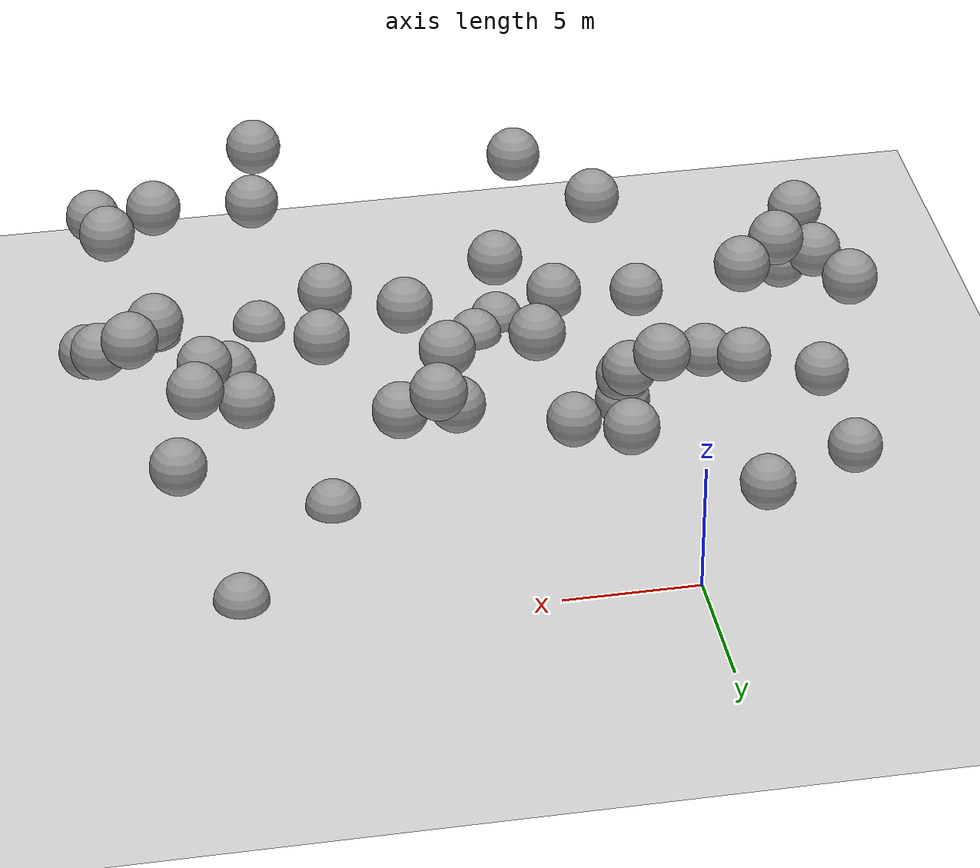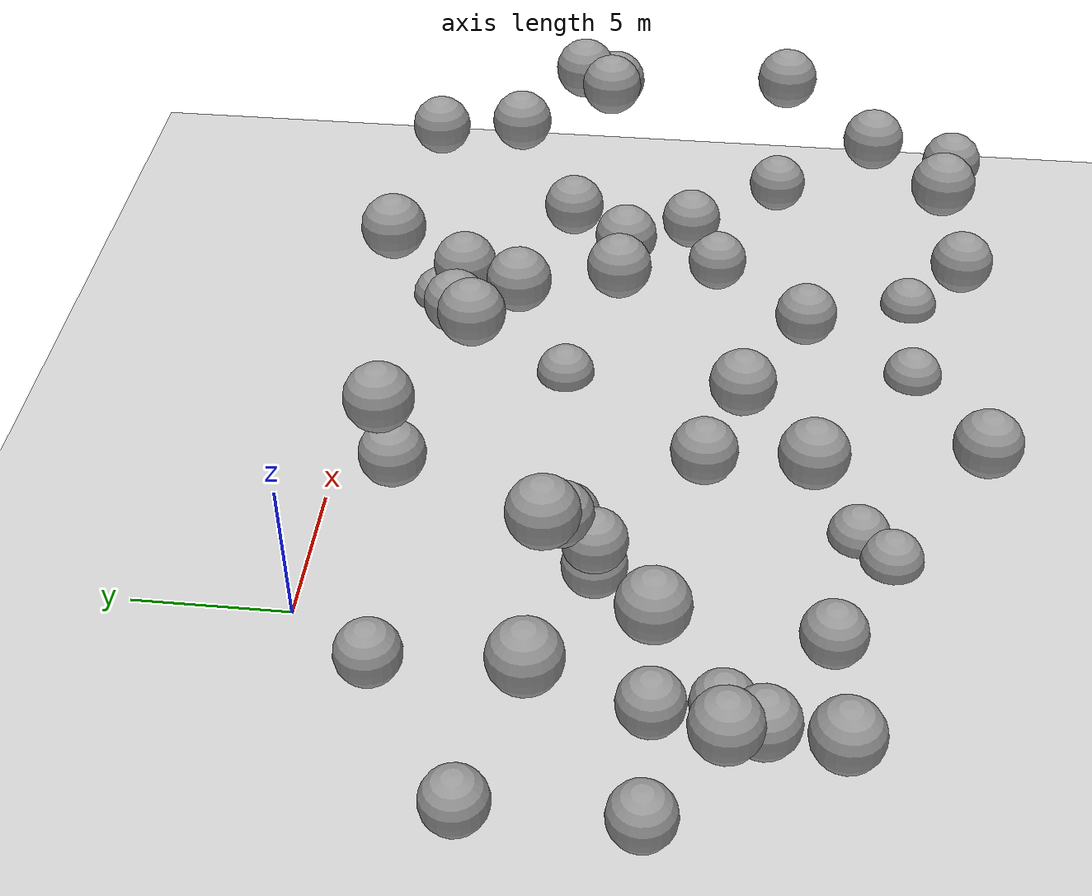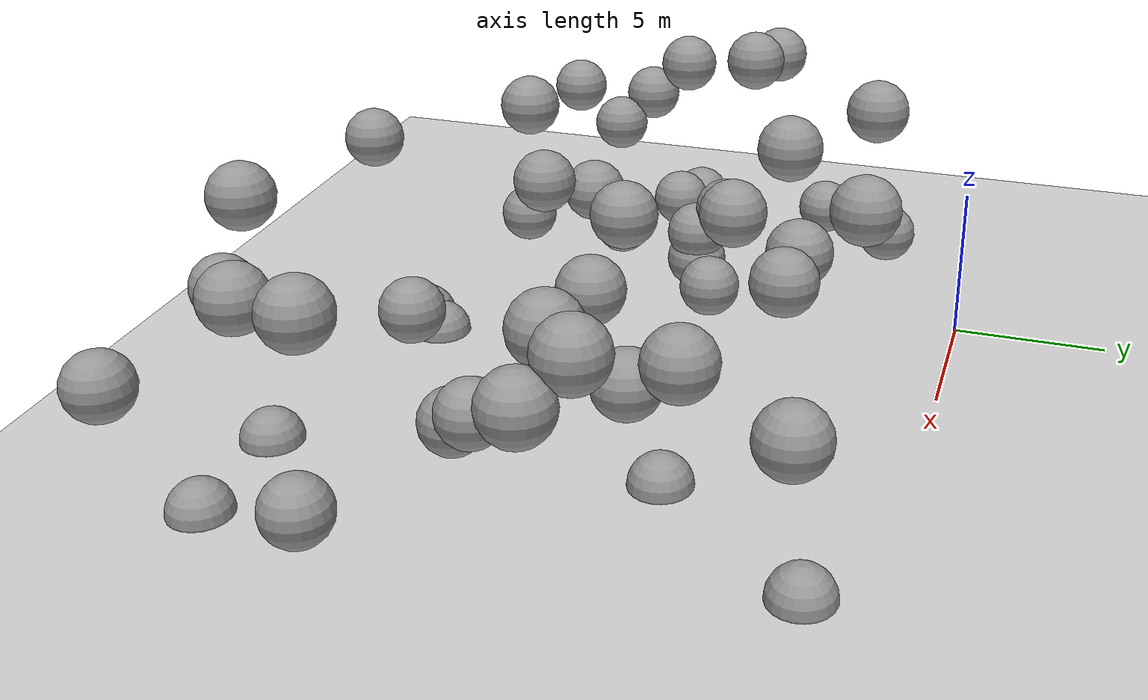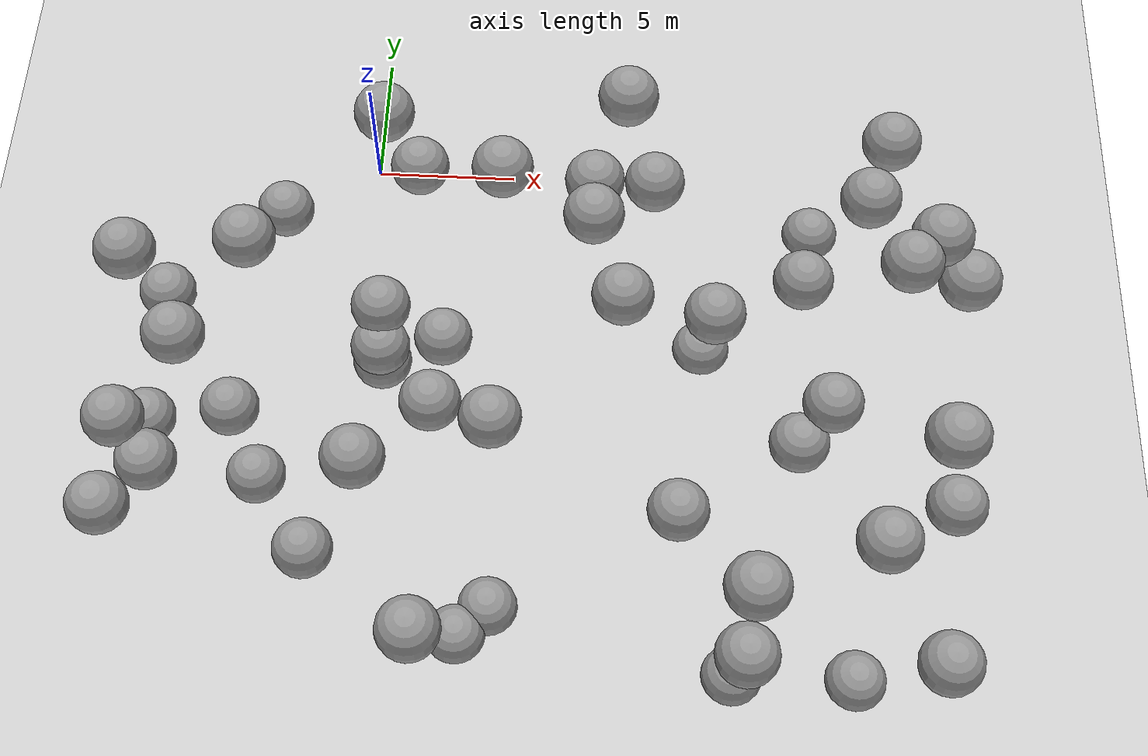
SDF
<sdf version="1.7">
 <world name="default">
  <model name="ground_plane">
   <static>1</static>
   <link name="link">
    <collision name="collision">
     <geometry><plane><normal>0 0 1</normal><size>100 100</size></plane></geometry>
     <surface>
      <contact><collide_bitmask>65535</collide_bitmask></contact>
      <friction><ode><mu>100</mu><mu2>50</mu2></ode></friction>
     </surface>
    </collision>
    <visual name="visual">
     <cast_shadows>0</cast_shadows>
     <geometry><plane><normal>0 0 1</normal><size>100 100</size></plane></geometry>
     <material>
      <script><uri>file://media/materials/scripts/gazebo.material</uri><name>Gazebo/Grey</name></script>
     </material>
    </visual>
   </link>
  </model>
  <model name="sphere_3">
   <static>1</static>
   <pose>15 -7 5 0 0 0</pose>
   <link name="link">
    <inertial>
     <mass>418.87902047863906</mass>
     <inertia>
      <ixx>167.55160819145564</ixx>
      <iyy>167.55160819145564</iyy>
      <izz>167.55160819145564</izz>
      <ixy>0</ixy>
      <ixz>0</ixz>
      <iyz>0</iyz>
     </inertia>
    </inertial>
    <collision name="collision"><geometry><sphere><radius>1.0</radius></sphere></geometry></collision>
    <visual name="visual">
     <geometry><sphere><radius>1.0</radius></sphere></geometry>
     <material>
      <script><uri>file://media/materials/scripts/gazebo.material</uri><name>Gazebo/Grey</name></script>
     </material>
    </visual>
   </link>
  </model>
  <model name="sphere_5">
   <static>1</static>
   <pose>12 -7 0 0 0 0</pose>
   <link name="link">
    <inertial>
     <mass>418.87902047863906</mass>
     <inertia>
      <ixx>167.55160819145564</ixx>
      <iyy>167.55160819145564</iyy>
      <izz>167.55160819145564</izz>
      <ixy>0</ixy>
      <ixz>0</ixz>
      <iyz>0</iyz>
     </inertia>
    </inertial>
    <collision name="collision"><geometry><sphere><radius>1.0</radius></sphere></geometry></collision>
    <visual name="visual">
     <geometry><sphere><radius>1.0</radius></sphere></geometry>
     <material>
      <script><uri>file://media/materials/scripts/gazebo.material</uri><name>Gazebo/Grey</name></script>
     </material>
    </visual>
   </link>
  </model>
  <model name="sphere_7">
   <static>1</static>
   <pose>1 -9 3 0 0 0</pose>
   <link name="link">
    <inertial>
     <mass>418.87902047863906</mass>
     <inertia>
      <ixx>167.55160819145564</ixx>
      <iyy>167.55160819145564</iyy>
      <izz>167.55160819145564</izz>
      <ixy>0</ixy>
      <ixz>0</ixz>
      <iyz>0</iyz>
     </inertia>
    </inertial>
    <collision name="collision"><geometry><sphere><radius>1.0</radius></sphere></geometry></collision>
    <visual name="visual">
     <geometry><sphere><radius>1.0</radius></sphere></geometry>
     <material>
      <script><uri>file://media/materials/scripts/gazebo.material</uri><name>Gazebo/Grey</name></script>
     </material>
    </visual>
   </link>
  </model>
  <model name="sphere_12">
   <static>1</static>
   <pose>19 -20 5 0 0 0</pose>
   <link name="link">
    <inertial>
     <mass>418.87902047863906</mass>
     <inertia>
      <ixx>167.55160819145564</ixx>
      <iyy>167.55160819145564</iyy>
      <izz>167.55160819145564</izz>
      <ixy>0</ixy>
      <ixz>0</ixz>
      <iyz>0</iyz>
     </inertia>
    </inertial>
    <collision name="collision"><geometry><sphere><radius>1.0</radius></sphere></geometry></collision>
    <visual name="visual">
     <geometry><sphere><radius>1.0</radius></sphere></geometry>
     <material>
      <script><uri>file://media/materials/scripts/gazebo.material</uri><name>Gazebo/Grey</name></script>
     </material>
    </visual>
   </link>
  </model>
  <model name="sphere_15">
   <static>1</static>
   <pose>-7 -13 5 0 0 0</pose>
   <link name="link">
    <inertial>
     <mass>418.87902047863906</mass>
     <inertia>
      <ixx>167.55160819145564</ixx>
      <iyy>167.55160819145564</iyy>
      <izz>167.55160819145564</izz>
      <ixy>0</ixy>
      <ixz>0</ixz>
      <iyz>0</iyz>
     </inertia>
    </inertial>
    <collision name="collision"><geometry><sphere><radius>1.0</radius></sphere></geometry></collision>
    <visual name="visual">
     <geometry><sphere><radius>1.0</radius></sphere></geometry>
     <material>
      <script><uri>file://media/materials/scripts/gazebo.material</uri><name>Gazebo/Grey</name></script>
     </material>
    </visual>
   </link>
  </model>
  <model name="sphere_17">
   <static>1</static>
   <pose>13 -20 5 0 0 0</pose>
   <link name="link">
    <inertial>
     <mass>418.87902047863906</mass>
     <inertia>
      <ixx>167.55160819145564</ixx>
      <iyy>167.55160819145564</iyy>
      <izz>167.55160819145564</izz>
      <ixy>0</ixy>
      <ixz>0</ixz>
      <iyz>0</iyz>
     </inertia>
    </inertial>
    <collision name="collision"><geometry><sphere><radius>1.0</radius></sphere></geometry></collision>
    <visual name="visual">
     <geometry><sphere><radius>1.0</radius></sphere></geometry>
     <material>
      <script><uri>file://media/materials/scripts/gazebo.material</uri><name>Gazebo/Grey</name></script>
     </material>
    </visual>
   </link>
  </model>
  <model name="sphere_21">
   <static>1</static>
   <pose>13 -19 8 0 0 0</pose>
   <link name="link">
    <inertial>
     <mass>418.87902047863906</mass>
     <inertia>
      <ixx>167.55160819145564</ixx>
      <iyy>167.55160819145564</iyy>
      <izz>167.55160819145564</izz>
      <ixy>0</ixy>
      <ixz>0</ixz>
      <iyz>0</iyz>
     </inertia>
    </inertial>
    <collision name="collision"><geometry><sphere><radius>1.0</radius></sphere></geometry></collision>
    <visual name="visual">
     <geometry><sphere><radius>1.0</radius></sphere></geometry>
     <material>
      <script><uri>file://media/materials/scripts/gazebo.material</uri><name>Gazebo/Grey</name></script>
     </material>
    </visual>
   </link>
  </model>
  <model name="sphere_23">
   <static>1</static>
   <pose>-7 -16 5 0 0 0</pose>
   <link name="link">
    <inertial>
     <mass>418.87902047863906</mass>
     <inertia>
      <ixx>167.55160819145564</ixx>
      <iyy>167.55160819145564</iyy>
      <izz>167.55160819145564</izz>
      <ixy>0</ixy>
      <ixz>0</ixz>
      <iyz>0</iyz>
     </inertia>
    </inertial>
    <collision name="collision"><geometry><sphere><radius>1.0</radius></sphere></geometry></collision>
    <visual name="visual">
     <geometry><sphere><radius>1.0</radius></sphere></geometry>
     <material>
      <script><uri>file://media/materials/scripts/gazebo.material</uri><name>Gazebo/Grey</name></script>
     </material>
    </visual>
   </link>
  </model>
  <model name="sphere_25">
   <static>1</static>
   <pose>2 -3 5 0 0 0</pose>
   <link name="link">
    <inertial>
     <mass>418.87902047863906</mass>
     <inertia>
      <ixx>167.55160819145564</ixx>
      <iyy>167.55160819145564</iyy>
      <izz>167.55160819145564</izz>
      <ixy>0</ixy>
      <ixz>0</ixz>
      <iyz>0</iyz>
     </inertia>
    </inertial>
    <collision name="collision"><geometry><sphere><radius>1.0</radius></sphere></geometry></collision>
    <visual name="visual">
     <geometry><sphere><radius>1.0</radius></sphere></geometry>
     <material>
      <script><uri>file://media/materials/scripts/gazebo.material</uri><name>Gazebo/Grey</name></script>
     </material>
    </visual>
   </link>
  </model>
  <model name="sphere_27">
   <static>1</static>
   <pose>11 -15 4 0 0 0</pose>
   <link name="link">
    <inertial>
     <mass>418.87902047863906</mass>
     <inertia>
      <ixx>167.55160819145564</ixx>
      <iyy>167.55160819145564</iyy>
      <izz>167.55160819145564</izz>
      <ixy>0</ixy>
      <ixz>0</ixz>
      <iyz>0</iyz>
     </inertia>
    </inertial>
    <collision name="collision"><geometry><sphere><radius>1.0</radius></sphere></geometry></collision>
    <visual name="visual">
     <geometry><sphere><radius>1.0</radius></sphere></geometry>
     <material>
      <script><uri>file://media/materials/scripts/gazebo.material</uri><name>Gazebo/Grey</name></script>
     </material>
    </visual>
   </link>
  </model>
  <model name="sphere_30">
   <static>1</static>
   <pose>13 -19 0 0 0 0</pose>
   <link name="link">
    <inertial>
     <mass>418.87902047863906</mass>
     <inertia>
      <ixx>167.55160819145564</ixx>
      <iyy>167.55160819145564</iyy>
      <izz>167.55160819145564</izz>
      <ixy>0</ixy>
      <ixz>0</ixz>
      <iyz>0</iyz>
     </inertia>
    </inertial>
    <collision name="collision"><geometry><sphere><radius>1.0</radius></sphere></geometry></collision>
    <visual name="visual">
     <geometry><sphere><radius>1.0</radius></sphere></geometry>
     <material>
      <script><uri>file://media/materials/scripts/gazebo.material</uri><name>Gazebo/Grey</name></script>
     </material>
    </visual>
   </link>
  </model>
  <model name="sphere_37">
   <static>1</static>
   <pose>1 -3 8 0 0 0</pose>
   <link name="link">
    <inertial>
     <mass>418.87902047863906</mass>
     <inertia>
      <ixx>167.55160819145564</ixx>
      <iyy>167.55160819145564</iyy>
      <izz>167.55160819145564</izz>
      <ixy>0</ixy>
      <ixz>0</ixz>
      <iyz>0</iyz>
     </inertia>
    </inertial>
    <collision name="collision"><geometry><sphere><radius>1.0</radius></sphere></geometry></collision>
    <visual name="visual">
     <geometry><sphere><radius>1.0</radius></sphere></geometry>
     <material>
      <script><uri>file://media/materials/scripts/gazebo.material</uri><name>Gazebo/Grey</name></script>
     </material>
    </visual>
   </link>
  </model>
  <model name="sphere_39">
   <static>1</static>
   <pose>18 -2 6 0 0 0</pose>
   <link name="link">
    <inertial>
     <mass>418.87902047863906</mass>
     <inertia>
      <ixx>167.55160819145564</ixx>
      <iyy>167.55160819145564</iyy>
      <izz>167.55160819145564</izz>
      <ixy>0</ixy>
      <ixz>0</ixz>
      <iyz>0</iyz>
     </inertia>
    </inertial>
    <collision name="collision"><geometry><sphere><radius>1.0</radius></sphere></geometry></collision>
    <visual name="visual">
     <geometry><sphere><radius>1.0</radius></sphere></geometry>
     <material>
      <script><uri>file://media/materials/scripts/gazebo.material</uri><name>Gazebo/Grey</name></script>
     </material>
    </visual>
   </link>
  </model>
  <model name="sphere_42">
   <static>1</static>
   <pose>-5 -11 7 0 0 0</pose>
   <link name="link">
    <inertial>
     <mass>418.87902047863906</mass>
     <inertia>
      <ixx>167.55160819145564</ixx>
      <iyy>167.55160819145564</iyy>
      <izz>167.55160819145564</izz>
      <ixy>0</ixy>
      <ixz>0</ixz>
      <iyz>0</iyz>
     </inertia>
    </inertial>
    <collision name="collision"><geometry><sphere><radius>1.0</radius></sphere></geometry></collision>
    <visual name="visual">
     <geometry><sphere><radius>1.0</radius></sphere></geometry>
     <material>
      <script><uri>file://media/materials/scripts/gazebo.material</uri><name>Gazebo/Grey</name></script>
     </material>
    </visual>
   </link>
  </model>
  <model name="sphere_43">
   <static>1</static>
   <pose>18 -8 8 0 0 0</pose>
   <link name="link">
    <inertial>
     <mass>418.87902047863906</mass>
     <inertia>
      <ixx>167.55160819145564</ixx>
      <iyy>167.55160819145564</iyy>
      <izz>167.55160819145564</izz>
      <ixy>0</ixy>
      <ixz>0</ixz>
      <iyz>0</iyz>
     </inertia>
    </inertial>
    <collision name="collision"><geometry><sphere><radius>1.0</radius></sphere></geometry></collision>
    <visual name="visual">
     <geometry><sphere><radius>1.0</radius></sphere></geometry>
     <material>
      <script><uri>file://media/materials/scripts/gazebo.material</uri><name>Gazebo/Grey</name></script>
     </material>
    </visual>
   </link>
  </model>
  <model name="sphere_48">
   <static>1</static>
   <pose>5 -5 8 0 0 0</pose>
   <link name="link">
    <inertial>
     <mass>418.87902047863906</mass>
     <inertia>
      <ixx>167.55160819145564</ixx>
      <iyy>167.55160819145564</iyy>
      <izz>167.55160819145564</izz>
      <ixy>0</ixy>
      <ixz>0</ixz>
      <iyz>0</iyz>
     </inertia>
    </inertial>
    <collision name="collision"><geometry><sphere><radius>1.0</radius></sphere></geometry></collision>
    <visual name="visual">
     <geometry><sphere><radius>1.0</radius></sphere></geometry>
     <material>
      <script><uri>file://media/materials/scripts/gazebo.material</uri><name>Gazebo/Grey</name></script>
     </material>
    </visual>
   </link>
  </model>
  <model name="sphere_49">
   <static>1</static>
   <pose>16 -11 4 0 0 0</pose>
   <link name="link">
    <inertial>
     <mass>418.87902047863906</mass>
     <inertia>
      <ixx>167.55160819145564</ixx>
      <iyy>167.55160819145564</iyy>
      <izz>167.55160819145564</izz>
      <ixy>0</ixy>
      <ixz>0</ixz>
      <iyz>0</iyz>
     </inertia>
    </inertial>
    <collision name="collision"><geometry><sphere><radius>1.0</radius></sphere></geometry></collision>
    <visual name="visual">
     <geometry><sphere><radius>1.0</radius></sphere></geometry>
     <material>
      <script><uri>file://media/materials/scripts/gazebo.material</uri><name>Gazebo/Grey</name></script>
     </material>
    </visual>
   </link>
  </model>
  <model name="sphere_51">
   <static>1</static>
   <pose>20 -8 7 0 0 0</pose>
   <link name="link">
    <inertial>
     <mass>418.87902047863906</mass>
     <inertia>
      <ixx>167.55160819145564</ixx>
      <iyy>167.55160819145564</iyy>
      <izz>167.55160819145564</izz>
      <ixy>0</ixy>
      <ixz>0</ixz>
      <iyz>0</iyz>
     </inertia>
    </inertial>
    <collision name="collision"><geometry><sphere><radius>1.0</radius></sphere></geometry></collision>
    <visual name="visual">
     <geometry><sphere><radius>1.0</radius></sphere></geometry>
     <material>
      <script><uri>file://media/materials/scripts/gazebo.material</uri><name>Gazebo/Grey</name></script>
     </material>
    </visual>
   </link>
  </model>
  <model name="sphere_52">
   <static>1</static>
   <pose>17 -17 7 0 0 0</pose>
   <link name="link">
    <inertial>
     <mass>418.87902047863906</mass>
     <inertia>
      <ixx>167.55160819145564</ixx>
      <iyy>167.55160819145564</iyy>
      <izz>167.55160819145564</izz>
      <ixy>0</ixy>
      <ixz>0</ixz>
      <iyz>0</iyz>
     </inertia>
    </inertial>
    <collision name="collision"><geometry><sphere><radius>1.0</radius></sphere></geometry></collision>
    <visual name="visual">
     <geometry><sphere><radius>1.0</radius></sphere></geometry>
     <material>
      <script><uri>file://media/materials/scripts/gazebo.material</uri><name>Gazebo/Grey</name></script>
     </material>
    </visual>
   </link>
  </model>
  <model name="sphere_54">
   <static>1</static>
   <pose>17 -5 7 0 0 0</pose>
   <link name="link">
    <inertial>
     <mass>418.87902047863906</mass>
     <inertia>
      <ixx>167.55160819145564</ixx>
      <iyy>167.55160819145564</iyy>
      <izz>167.55160819145564</izz>
      <ixy>0</ixy>
      <ixz>0</ixz>
      <iyz>0</iyz>
     </inertia>
    </inertial>
    <collision name="collision"><geometry><sphere><radius>1.0</radius></sphere></geometry></collision>
    <visual name="visual">
     <geometry><sphere><radius>1.0</radius></sphere></geometry>
     <material>
      <script><uri>file://media/materials/scripts/gazebo.material</uri><name>Gazebo/Grey</name></script>
     </material>
    </visual>
   </link>
  </model>
  <model name="sphere_55">
   <static>1</static>
   <pose>19 -14 8 0 0 0</pose>
   <link name="link">
    <inertial>
     <mass>418.87902047863906</mass>
     <inertia>
      <ixx>167.55160819145564</ixx>
      <iyy>167.55160819145564</iyy>
      <izz>167.55160819145564</izz>
      <ixy>0</ixy>
      <ixz>0</ixz>
      <iyz>0</iyz>
     </inertia>
    </inertial>
    <collision name="collision"><geometry><sphere><radius>1.0</radius></sphere></geometry></collision>
    <visual name="visual">
     <geometry><sphere><radius>1.0</radius></sphere></geometry>
     <material>
      <script><uri>file://media/materials/scripts/gazebo.material</uri><name>Gazebo/Grey</name></script>
     </material>
    </visual>
   </link>
  </model>
  <model name="sphere_56">
   <static>1</static>
   <pose>-7 -6 1 0 0 0</pose>
   <link name="link">
    <inertial>
     <mass>418.87902047863906</mass>
     <inertia>
      <ixx>167.55160819145564</ixx>
      <iyy>167.55160819145564</iyy>
      <izz>167.55160819145564</izz>
      <ixy>0</ixy>
      <ixz>0</ixz>
      <iyz>0</iyz>
     </inertia>
    </inertial>
    <collision name="collision"><geometry><sphere><radius>1.0</radius></sphere></geometry></collision>
    <visual name="visual">
     <geometry><sphere><radius>1.0</radius></sphere></geometry>
     <material>
      <script><uri>file://media/materials/scripts/gazebo.material</uri><name>Gazebo/Grey</name></script>
     </material>
    </visual>
   </link>
  </model>
  <model name="sphere_57">
   <static>1</static>
   <pose>19 -7 8 0 0 0</pose>
   <link name="link">
    <inertial>
     <mass>418.87902047863906</mass>
     <inertia>
      <ixx>167.55160819145564</ixx>
      <iyy>167.55160819145564</iyy>
      <izz>167.55160819145564</izz>
      <ixy>0</ixy>
      <ixz>0</ixz>
      <iyz>0</iyz>
     </inertia>
    </inertial>
    <collision name="collision"><geometry><sphere><radius>1.0</radius></sphere></geometry></collision>
    <visual name="visual">
     <geometry><sphere><radius>1.0</radius></sphere></geometry>
     <material>
      <script><uri>file://media/materials/scripts/gazebo.material</uri><name>Gazebo/Grey</name></script>
     </material>
    </visual>
   </link>
  </model>
  <model name="sphere_58">
   <static>1</static>
   <pose>4 -18 0 0 0 0</pose>
   <link name="link">
    <inertial>
     <mass>418.87902047863906</mass>
     <inertia>
      <ixx>167.55160819145564</ixx>
      <iyy>167.55160819145564</iyy>
      <izz>167.55160819145564</izz>
      <ixy>0</ixy>
      <ixz>0</ixz>
      <iyz>0</iyz>
     </inertia>
    </inertial>
    <collision name="collision"><geometry><sphere><radius>1.0</radius></sphere></geometry></collision>
    <visual name="visual">
     <geometry><sphere><radius>1.0</radius></sphere></geometry>
     <material>
      <script><uri>file://media/materials/scripts/gazebo.material</uri><name>Gazebo/Grey</name></script>
     </material>
    </visual>
   </link>
  </model>
  <model name="sphere_59">
   <static>1</static>
   <pose>-7 -11 1 0 0 0</pose>
   <link name="link">
    <inertial>
     <mass>418.87902047863906</mass>
     <inertia>
      <ixx>167.55160819145564</ixx>
      <iyy>167.55160819145564</iyy>
      <izz>167.55160819145564</izz>
      <ixy>0</ixy>
      <ixz>0</ixz>
      <iyz>0</iyz>
     </inertia>
    </inertial>
    <collision name="collision"><geometry><sphere><radius>1.0</radius></sphere></geometry></collision>
    <visual name="visual">
     <geometry><sphere><radius>1.0</radius></sphere></geometry>
     <material>
      <script><uri>file://media/materials/scripts/gazebo.material</uri><name>Gazebo/Grey</name></script>
     </material>
    </visual>
   </link>
  </model>
  <model name="sphere_60">
   <static>1</static>
   <pose>17 -19 0 0 0 0</pose>
   <link name="link">
    <inertial>
     <mass>418.87902047863906</mass>
     <inertia>
      <ixx>167.55160819145564</ixx>
      <iyy>167.55160819145564</iyy>
      <izz>167.55160819145564</izz>
      <ixy>0</ixy>
      <ixz>0</ixz>
      <iyz>0</iyz>
     </inertia>
    </inertial>
    <collision name="collision"><geometry><sphere><radius>1.0</radius></sphere></geometry></collision>
    <visual name="visual">
     <geometry><sphere><radius>1.0</radius></sphere></geometry>
     <material>
      <script><uri>file://media/materials/scripts/gazebo.material</uri><name>Gazebo/Grey</name></script>
     </material>
    </visual>
   </link>
  </model>
  <model name="sphere_63">
   <static>1</static>
   <pose>3 -8 2 0 0 0</pose>
   <link name="link">
    <inertial>
     <mass>418.87902047863906</mass>
     <inertia>
      <ixx>167.55160819145564</ixx>
      <iyy>167.55160819145564</iyy>
      <izz>167.55160819145564</izz>
      <ixy>0</ixy>
      <ixz>0</ixz>
      <iyz>0</iyz>
     </inertia>
    </inertial>
    <collision name="collision"><geometry><sphere><radius>1.0</radius></sphere></geometry></collision>
    <visual name="visual">
     <geometry><sphere><radius>1.0</radius></sphere></geometry>
     <material>
      <script><uri>file://media/materials/scripts/gazebo.material</uri><name>Gazebo/Grey</name></script>
     </material>
    </visual>
   </link>
  </model>
  <model name="sphere_64">
   <static>1</static>
   <pose>-1 -16 2 0 0 0</pose>
   <link name="link">
    <inertial>
     <mass>418.87902047863906</mass>
     <inertia>
      <ixx>167.55160819145564</ixx>
      <iyy>167.55160819145564</iyy>
      <izz>167.55160819145564</izz>
      <ixy>0</ixy>
      <ixz>0</ixz>
      <iyz>0</iyz>
     </inertia>
    </inertial>
    <collision name="collision"><geometry><sphere><radius>1.0</radius></sphere></geometry></collision>
    <visual name="visual">
     <geometry><sphere><radius>1.0</radius></sphere></geometry>
     <material>
      <script><uri>file://media/materials/scripts/gazebo.material</uri><name>Gazebo/Grey</name></script>
     </material>
    </visual>
   </link>
  </model>
  <model name="sphere_68">
   <static>1</static>
   <pose>16 -2 0 0 0 0</pose>
   <link name="link">
    <inertial>
     <mass>418.87902047863906</mass>
     <inertia>
      <ixx>167.55160819145564</ixx>
      <iyy>167.55160819145564</iyy>
      <izz>167.55160819145564</izz>
      <ixy>0</ixy>
      <ixz>0</ixz>
      <iyz>0</iyz>
     </inertia>
    </inertial>
    <collision name="collision"><geometry><sphere><radius>1.0</radius></sphere></geometry></collision>
    <visual name="visual">
     <geometry><sphere><radius>1.0</radius></sphere></geometry>
     <material>
      <script><uri>file://media/materials/scripts/gazebo.material</uri><name>Gazebo/Grey</name></script>
     </material>
    </visual>
   </link>
  </model>
  <model name="sphere_69">
   <static>1</static>
   <pose>-3 -13 1 0 0 0</pose>
   <link name="link">
    <inertial>
     <mass>418.87902047863906</mass>
     <inertia>
      <ixx>167.55160819145564</ixx>
      <iyy>167.55160819145564</iyy>
      <izz>167.55160819145564</izz>
      <ixy>0</ixy>
      <ixz>0</ixz>
      <iyz>0</iyz>
     </inertia>
    </inertial>
    <collision name="collision"><geometry><sphere><radius>1.0</radius></sphere></geometry></collision>
    <visual name="visual">
     <geometry><sphere><radius>1.0</radius></sphere></geometry>
     <material>
      <script><uri>file://media/materials/scripts/gazebo.material</uri><name>Gazebo/Grey</name></script>
     </material>
    </visual>
   </link>
  </model>
  <model name="sphere_72">
   <static>1</static>
   <pose>9 -2 8 0 0 0</pose>
   <link name="link">
    <inertial>
     <mass>418.87902047863906</mass>
     <inertia>
      <ixx>167.55160819145564</ixx>
      <iyy>167.55160819145564</iyy>
      <izz>167.55160819145564</izz>
      <ixy>0</ixy>
      <ixz>0</ixz>
      <iyz>0</iyz>
     </inertia>
    </inertial>
    <collision name="collision"><geometry><sphere><radius>1.0</radius></sphere></geometry></collision>
    <visual name="visual">
     <geometry><sphere><radius>1.0</radius></sphere></geometry>
     <material>
      <script><uri>file://media/materials/scripts/gazebo.material</uri><name>Gazebo/Grey</name></script>
     </material>
    </visual>
   </link>
  </model>
  <model name="sphere_81">
   <static>1</static>
   <pose>12 -9 6 0 0 0</pose>
   <link name="link">
    <inertial>
     <mass>418.87902047863906</mass>
     <inertia>
      <ixx>167.55160819145564</ixx>
      <iyy>167.55160819145564</iyy>
      <izz>167.55160819145564</izz>
      <ixy>0</ixy>
      <ixz>0</ixz>
      <iyz>0</iyz>
     </inertia>
    </inertial>
    <collision name="collision"><geometry><sphere><radius>1.0</radius></sphere></geometry></collision>
    <visual name="visual">
     <geometry><sphere><radius>1.0</radius></sphere></geometry>
     <material>
      <script><uri>file://media/materials/scripts/gazebo.material</uri><name>Gazebo/Grey</name></script>
     </material>
    </visual>
   </link>
  </model>
  <model name="sphere_83">
   <static>1</static>
   <pose>3 -12 5 0 0 0</pose>
   <link name="link">
    <inertial>
     <mass>418.87902047863906</mass>
     <inertia>
      <ixx>167.55160819145564</ixx>
      <iyy>167.55160819145564</iyy>
      <izz>167.55160819145564</izz>
      <ixy>0</ixy>
      <ixz>0</ixz>
      <iyz>0</iyz>
     </inertia>
    </inertial>
    <collision name="collision"><geometry><sphere><radius>1.0</radius></sphere></geometry></collision>
    <visual name="visual">
     <geometry><sphere><radius>1.0</radius></sphere></geometry>
     <material>
      <script><uri>file://media/materials/scripts/gazebo.material</uri><name>Gazebo/Grey</name></script>
     </material>
    </visual>
   </link>
  </model>
  <model name="sphere_85">
   <static>1</static>
   <pose>8 -6 7 0 0 0</pose>
   <link name="link">
    <inertial>
     <mass>418.87902047863906</mass>
     <inertia>
      <ixx>167.55160819145564</ixx>
      <iyy>167.55160819145564</iyy>
      <izz>167.55160819145564</izz>
      <ixy>0</ixy>
      <ixz>0</ixz>
      <iyz>0</iyz>
     </inertia>
    </inertial>
    <collision name="collision"><geometry><sphere><radius>1.0</radius></sphere></geometry></collision>
    <visual name="visual">
     <geometry><sphere><radius>1.0</radius></sphere></geometry>
     <material>
      <script><uri>file://media/materials/scripts/gazebo.material</uri><name>Gazebo/Grey</name></script>
     </material>
    </visual>
   </link>
  </model>
  <model name="sphere_90">
   <static>1</static>
   <pose>8 -4 6 0 0 0</pose>
   <link name="link">
    <inertial>
     <mass>418.87902047863906</mass>
     <inertia>
      <ixx>167.55160819145564</ixx>
      <iyy>167.55160819145564</iyy>
      <izz>167.55160819145564</izz>
      <ixy>0</ixy>
      <ixz>0</ixz>
      <iyz>0</iyz>
     </inertia>
    </inertial>
    <collision name="collision"><geometry><sphere><radius>1.0</radius></sphere></geometry></collision>
    <visual name="visual">
     <geometry><sphere><radius>1.0</radius></sphere></geometry>
     <material>
      <script><uri>file://media/materials/scripts/gazebo.material</uri><name>Gazebo/Grey</name></script>
     </material>
    </visual>
   </link>
  </model>
  <model name="sphere_94">
   <static>1</static>
   <pose>1 -15 7 0 0 0</pose>
   <link name="link">
    <inertial>
     <mass>418.87902047863906</mass>
     <inertia>
      <ixx>167.55160819145564</ixx>
      <iyy>167.55160819145564</iyy>
      <izz>167.55160819145564</izz>
      <ixy>0</ixy>
      <ixz>0</ixz>
      <iyz>0</iyz>
     </inertia>
    </inertial>
    <collision name="collision"><geometry><sphere><radius>1.0</radius></sphere></geometry></collision>
    <visual name="visual">
     <geometry><sphere><radius>1.0</radius></sphere></geometry>
     <material>
      <script><uri>file://media/materials/scripts/gazebo.material</uri><name>Gazebo/Grey</name></script>
     </material>
    </visual>
   </link>
  </model>
  <model name="sphere_99">
   <static>1</static>
   <pose>1 -8 4 0 0 0</pose>
   <link name="link">
    <inertial>
     <mass>418.87902047863906</mass>
     <inertia>
      <ixx>167.55160819145564</ixx>
      <iyy>167.55160819145564</iyy>
      <izz>167.55160819145564</izz>
      <ixy>0</ixy>
      <ixz>0</ixz>
      <iyz>0</iyz>
     </inertia>
    </inertial>
    <collision name="collision"><geometry><sphere><radius>1.0</radius></sphere></geometry></collision>
    <visual name="visual">
     <geometry><sphere><radius>1.0</radius></sphere></geometry>
     <material>
      <script><uri>file://media/materials/scripts/gazebo.material</uri><name>Gazebo/Grey</name></script>
     </material>
    </visual>
   </link>
  </model>
  <model name="sphere_100">
   <static>1</static>
   <pose>10 -4 6 0 0 0</pose>
   <link name="link">
    <inertial>
     <mass>418.87902047863906</mass>
     <inertia>
      <ixx>167.55160819145564</ixx>
      <iyy>167.55160819145564</iyy>
      <izz>167.55160819145564</izz>
      <ixy>0</ixy>
      <ixz>0</ixz>
      <iyz>0</iyz>
     </inertia>
    </inertial>
    <collision name="collision"><geometry><sphere><radius>1.0</radius></sphere></geometry></collision>
    <visual name="visual">
     <geometry><sphere><radius>1.0</radius></sphere></geometry>
     <material>
      <script><uri>file://media/materials/scripts/gazebo.material</uri><name>Gazebo/Grey</name></script>
     </material>
    </visual>
   </link>
  </model>
  <model name="sphere_113">
   <static>1</static>
   <pose>3 -20 6 0 0 0</pose>
   <link name="link">
    <inertial>
     <mass>418.87902047863906</mass>
     <inertia>
      <ixx>167.55160819145564</ixx>
      <iyy>167.55160819145564</iyy>
      <izz>167.55160819145564</izz>
      <ixy>0</ixy>
      <ixz>0</ixz>
      <iyz>0</iyz>
     </inertia>
    </inertial>
    <collision name="collision"><geometry><sphere><radius>1.0</radius></sphere></geometry></collision>
    <visual name="visual">
     <geometry><sphere><radius>1.0</radius></sphere></geometry>
     <material>
      <script><uri>file://media/materials/scripts/gazebo.material</uri><name>Gazebo/Grey</name></script>
     </material>
    </visual>
   </link>
  </model>
  <model name="sphere_114">
   <static>1</static>
   <pose>-7 -8 7 0 0 0</pose>
   <link name="link">
    <inertial>
     <mass>418.87902047863906</mass>
     <inertia>
      <ixx>167.55160819145564</ixx>
      <iyy>167.55160819145564</iyy>
      <izz>167.55160819145564</izz>
      <ixy>0</ixy>
      <ixz>0</ixz>
      <iyz>0</iyz>
     </inertia>
    </inertial>
    <collision name="collision"><geometry><sphere><radius>1.0</radius></sphere></geometry></collision>
    <visual name="visual">
     <geometry><sphere><radius>1.0</radius></sphere></geometry>
     <material>
      <script><uri>file://media/materials/scripts/gazebo.material</uri><name>Gazebo/Grey</name></script>
     </material>
    </visual>
   </link>
  </model>
  <model name="sphere_117">
   <static>1</static>
   <pose>5 -13 6 0 0 0</pose>
   <link name="link">
    <inertial>
     <mass>418.87902047863906</mass>
     <inertia>
      <ixx>167.55160819145564</ixx>
      <iyy>167.55160819145564</iyy>
      <izz>167.55160819145564</izz>
      <ixy>0</ixy>
      <ixz>0</ixz>
      <iyz>0</iyz>
     </inertia>
    </inertial>
    <collision name="collision"><geometry><sphere><radius>1.0</radius></sphere></geometry></collision>
    <visual name="visual">
     <geometry><sphere><radius>1.0</radius></sphere></geometry>
     <material>
      <script><uri>file://media/materials/scripts/gazebo.material</uri><name>Gazebo/Grey</name></script>
     </material>
    </visual>
   </link>
  </model>
  <model name="sphere_121">
   <static>1</static>
   <pose>1 -9 2 0 0 0</pose>
   <link name="link">
    <inertial>
     <mass>418.87902047863906</mass>
     <inertia>
      <ixx>167.55160819145564</ixx>
      <iyy>167.55160819145564</iyy>
      <izz>167.55160819145564</izz>
      <ixy>0</ixy>
      <ixz>0</ixz>
      <iyz>0</iyz>
     </inertia>
    </inertial>
    <collision name="collision"><geometry><sphere><radius>1.0</radius></sphere></geometry></collision>
    <visual name="visual">
     <geometry><sphere><radius>1.0</radius></sphere></geometry>
     <material>
      <script><uri>file://media/materials/scripts/gazebo.material</uri><name>Gazebo/Grey</name></script>
     </material>
    </visual>
   </link>
  </model>
  <model name="sphere_125">
   <static>1</static>
   <pose>20 -14 3 0 0 0</pose>
   <link name="link">
    <inertial>
     <mass>418.87902047863906</mass>
     <inertia>
      <ixx>167.55160819145564</ixx>
      <iyy>167.55160819145564</iyy>
      <izz>167.55160819145564</izz>
      <ixy>0</ixy>
      <ixz>0</ixz>
      <iyz>0</iyz>
     </inertia>
    </inertial>
    <collision name="collision"><geometry><sphere><radius>1.0</radius></sphere></geometry></collision>
    <visual name="visual">
     <geometry><sphere><radius>1.0</radius></sphere></geometry>
     <material>
      <script><uri>file://media/materials/scripts/gazebo.material</uri><name>Gazebo/Grey</name></script>
     </material>
    </visual>
   </link>
  </model>
  <model name="sphere_127">
   <static>1</static>
   <pose>5 -17 0 0 0 0</pose>
   <link name="link">
    <inertial>
     <mass>418.87902047863906</mass>
     <inertia>
      <ixx>167.55160819145564</ixx>
      <iyy>167.55160819145564</iyy>
      <izz>167.55160819145564</izz>
      <ixy>0</ixy>
      <ixz>0</ixz>
      <iyz>0</iyz>
     </inertia>
    </inertial>
    <collision name="collision"><geometry><sphere><radius>1.0</radius></sphere></geometry></collision>
    <visual name="visual">
     <geometry><sphere><radius>1.0</radius></sphere></geometry>
     <material>
      <script><uri>file://media/materials/scripts/gazebo.material</uri><name>Gazebo/Grey</name></script>
     </material>
    </visual>
   </link>
  </model>
  <model name="sphere_131">
   <static>1</static>
   <pose>15 -12 3 0 0 0</pose>
   <link name="link">
    <inertial>
     <mass>418.87902047863906</mass>
     <inertia>
      <ixx>167.55160819145564</ixx>
      <iyy>167.55160819145564</iyy>
      <izz>167.55160819145564</izz>
      <ixy>0</ixy>
      <ixz>0</ixz>
      <iyz>0</iyz>
     </inertia>
    </inertial>
    <collision name="collision"><geometry><sphere><radius>1.0</radius></sphere></geometry></collision>
    <visual name="visual">
     <geometry><sphere><radius>1.0</radius></sphere></geometry>
     <material>
      <script><uri>file://media/materials/scripts/gazebo.material</uri><name>Gazebo/Grey</name></script>
     </material>
    </visual>
   </link>
  </model>
  <model name="sphere_135">
   <static>1</static>
   <pose>-6 -14 4 0 0 0</pose>
   <link name="link">
    <inertial>
     <mass>418.87902047863906</mass>
     <inertia>
      <ixx>167.55160819145564</ixx>
      <iyy>167.55160819145564</iyy>
      <izz>167.55160819145564</izz>
      <ixy>0</ixy>
      <ixz>0</ixz>
      <iyz>0</iyz>
     </inertia>
    </inertial>
    <collision name="collision"><geometry><sphere><radius>1.0</radius></sphere></geometry></collision>
    <visual name="visual">
     <geometry><sphere><radius>1.0</radius></sphere></geometry>
     <material>
      <script><uri>file://media/materials/scripts/gazebo.material</uri><name>Gazebo/Grey</name></script>
     </material>
    </visual>
   </link>
  </model>
  <model name="sphere_141">
   <static>1</static>
   <pose>9 -9 7 0 0 0</pose>
   <link name="link">
    <inertial>
     <mass>418.87902047863906</mass>
     <inertia>
      <ixx>167.55160819145564</ixx>
      <iyy>167.55160819145564</iyy>
      <izz>167.55160819145564</izz>
      <ixy>0</ixy>
      <ixz>0</ixz>
      <iyz>0</iyz>
     </inertia>
    </inertial>
    <collision name="collision"><geometry><sphere><radius>1.0</radius></sphere></geometry></collision>
    <visual name="visual">
     <geometry><sphere><radius>1.0</radius></sphere></geometry>
     <material>
      <script><uri>file://media/materials/scripts/gazebo.material</uri><name>Gazebo/Grey</name></script>
     </material>
    </visual>
   </link>
  </model>
  <model name="sphere_145">
   <static>1</static>
   <pose>-3 -3 2 0 0 0</pose>
   <link name="link">
    <inertial>
     <mass>418.87902047863906</mass>
     <inertia>
      <ixx>167.55160819145564</ixx>
      <iyy>167.55160819145564</iyy>
      <izz>167.55160819145564</izz>
      <ixy>0</ixy>
      <ixz>0</ixz>
      <iyz>0</iyz>
     </inertia>
    </inertial>
    <collision name="collision"><geometry><sphere><radius>1.0</radius></sphere></geometry></collision>
    <visual name="visual">
     <geometry><sphere><radius>1.0</radius></sphere></geometry>
     <material>
      <script><uri>file://media/materials/scripts/gazebo.material</uri><name>Gazebo/Grey</name></script>
     </material>
    </visual>
   </link>
  </model>
  <model name="sphere_146">
   <static>1</static>
   <pose>-3 -8 8 0 0 0</pose>
   <link name="link">
    <inertial>
     <mass>418.87902047863906</mass>
     <inertia>
      <ixx>167.55160819145564</ixx>
      <iyy>167.55160819145564</iyy>
      <izz>167.55160819145564</izz>
      <ixy>0</ixy>
      <ixz>0</ixz>
      <iyz>0</iyz>
     </inertia>
    </inertial>
    <collision name="collision"><geometry><sphere><radius>1.0</radius></sphere></geometry></collision>
    <visual name="visual">
     <geometry><sphere><radius>1.0</radius></sphere></geometry>
     <material>
      <script><uri>file://media/materials/scripts/gazebo.material</uri><name>Gazebo/Grey</name></script>
     </material>
    </visual>
   </link>
  </model>
  <model name="sphere_149">
   <static>1</static>
   <pose>-4 -11 2 0 0 0</pose>
   <link name="link">
    <inertial>
     <mass>418.87902047863906</mass>
     <inertia>
      <ixx>167.55160819145564</ixx>
      <iyy>167.55160819145564</iyy>
      <izz>167.55160819145564</izz>
      <ixy>0</ixy>
      <ixz>0</ixz>
      <iyz>0</iyz>
     </inertia>
    </inertial>
    <collision name="collision"><geometry><sphere><radius>1.0</radius></sphere></geometry></collision>
    <visual name="visual">
     <geometry><sphere><radius>1.0</radius></sphere></geometry>
     <material>
      <script><uri>file://media/materials/scripts/gazebo.material</uri><name>Gazebo/Grey</name></script>
     </material>
    </visual>
   </link>
  </model>
 </world>
</sdf>
